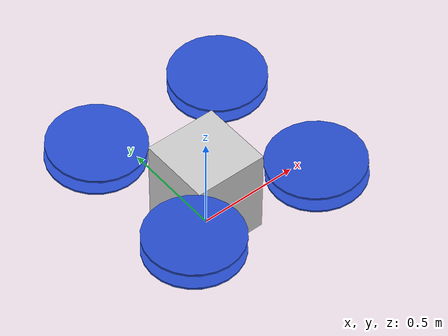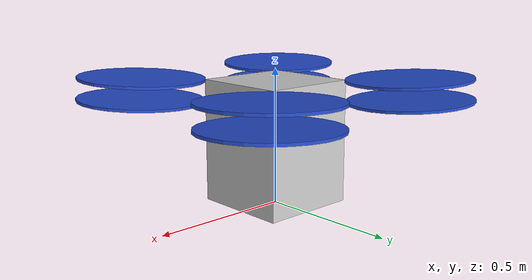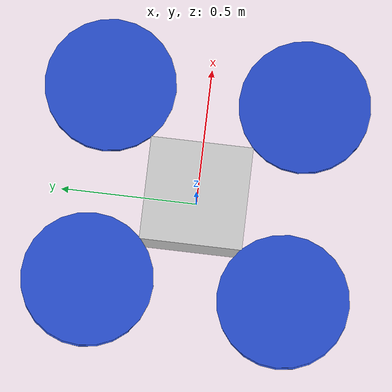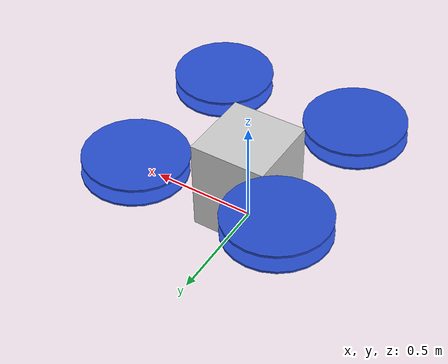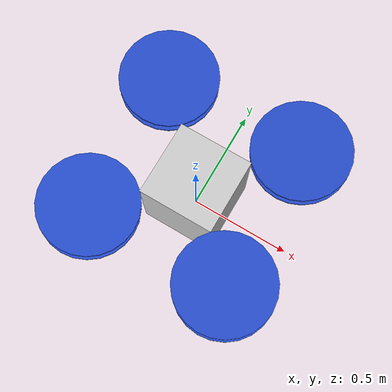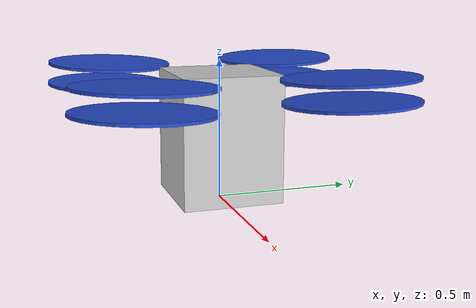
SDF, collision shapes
<?xml version='1.0'?>
<sdf version='1.0'>
  <model name='octa_coax'>
    <pose>0 0 0.37 0 0 0</pose>
    <link name='base_link'>
      <velocity_decay>
        <linear>0.0</linear>
        <angular>0.0</angular>
      </velocity_decay>
      <inertial>
        <pose>0 0 0 0 0 0</pose>
        <mass>5.14296</mass>
        <inertia>
          <ixx>0.20757895</ixx>
          <ixy>8.625e-005</ixy>
          <ixz>-0.0015239</ixz>
          <iyy>0.20539148</iyy>
          <iyz>0.00024137</iyz>
          <izz>0.34998503</izz>
        </inertia>
      </inertial>
      <collision name='base_link_collision'>
        <pose>0 0 -0.13579 0 0 0</pose>
        <geometry>
          <box>
            <size>0.3557 0.3557 0.45</size>
          </box>
        </geometry>
        <surface>
          <contact>
            <ode>
              <max_vel>100.0</max_vel>
              <min_depth>0.001</min_depth>
            </ode>
          </contact>
          <friction>
            <ode>
              <mu>100000.0</mu>
              <mu2>100000.0</mu2>
            </ode>
          </friction>
        </surface>
      </collision>
      <visual name='base_link_visual'>
        <geometry>
          <mesh>
            <uri>model://octa_coax/meshes/octa_coax.dae</uri>
          </mesh>
        </geometry>
        <material>
          <script>
            <name>Gazebo/LightGrey</name>
          </script>
        </material>
      </visual>
    </link>
    <link name='octa_coax/imu_link'>
      <inertial>
        <pose>0 0 0 0 0 0</pose>
        <mass>0.15</mass>
        <inertia>
          <ixx>0.00001</ixx>
          <ixy>0</ixy>
          <ixz>0</ixz>
          <iyy>0.00002</iyy>
          <iyz>0</iyz>
          <izz>0.00002</izz>
        </inertia>
      </inertial>
      <sensor name="imu_sensor" type="imu">
        <pose>0 0 0 3.141593 0 0</pose>
        <always_on>1</always_on>
        <update_rate>1000.0</update_rate>
      </sensor>
    </link>
    <joint name='octa_coax/imu_joint' type='revolute'>
      <child>octa_coax/imu_link</child>
      <parent>base_link</parent>
      <axis>
        <xyz>0 0 1</xyz>
        <limit>
          <lower>0</lower>
          <upper>0</upper>
          <effort>0</effort>
          <velocity>0</velocity>
        </limit>
        <dynamics>
          <damping>1.0</damping>
        </dynamics>
        <use_parent_model_frame>1</use_parent_model_frame>
      </axis>
      <physics>
        <ode>
          <implicit_spring_damper>1</implicit_spring_damper>
        </ode>
      </physics>
    </joint>
    <link name='rotor_0'>
      <pose>0.33920 -0.33742 0.09298 -2.946848039751995e-02 -2.956753593475833e-02 4.363589127691746e-04</pose>
      <inertial>
        <pose>0 0 0 0 0 0</pose>
        <mass>0.11147605</mass>
        <inertia>
          <ixx>0.00051843</ixx>
          <ixy>2.536e-005</ixy>
          <ixz>0</ixz>
          <iyy>3.704e-005</iyy>
          <iyz>0</iyz>
          <izz>0.00053899</izz>
        </inertia>
      </inertial>
      <collision name='rotor_0_collision'>
        <pose>0 0 0 0 0 0</pose>
        <geometry>
          <cylinder>
            <length>0.01</length>
            <radius>0.2285</radius>
          </cylinder>
        </geometry>
        <surface>
          <contact>
            <ode/>
          </contact>
          <friction>
            <ode/>
          </friction>
        </surface>
      </collision>
      <visual name='rotor_0_visual'>
        <pose>0 0 0 0 0 0</pose>
        <geometry>
          <mesh>
            <scale>1 1 1</scale>
            <uri>model://octa_coax/meshes/18x6propeller.dae</uri>
          </mesh>
        </geometry>
        <material>
          <script>
            <name>Gazebo/Blue</name>
            <uri>__default__</uri>
          </script>
        </material>
      </visual>
      <gravity>1</gravity>
      <velocity_decay/>
      <self_collide>0</self_collide>
    </link>
    <joint name='rotor_0_joint' type='revolute'>
      <child>rotor_0</child>
      <parent>base_link</parent>
      <axis>
        <xyz>0 0 1</xyz>
        <limit>
          <lower>-1e+16</lower>
          <upper>1e+16</upper>
        </limit>
        <dynamics>
          <damping>0.004</damping>
        </dynamics>
      </axis>
      <physics>
        <ode>
          <implicit_spring_damper>1</implicit_spring_damper>
        </ode>
      </physics>
    </joint>
    <link name='rotor_1'>
      <pose>0.33887 0.33758 0.09298 2.948243935315289e-02 -2.953876197514078e-02 -4.361408274508556e-04</pose>
      <inertial>
        <pose>0 0 0 0 0 0</pose>
        <mass>0.11147605</mass>
        <inertia>
          <ixx>0.00051843</ixx>
          <ixy>2.536e-005</ixy>
          <ixz>0</ixz>
          <iyy>3.704e-005</iyy>
          <iyz>0</iyz>
          <izz>0.00053899</izz>
        </inertia>
      </inertial>
      <collision name='rotor_1_collision'>
        <pose>0 0 0 0 0 0</pose>
        <geometry>
          <cylinder>
            <length>0.01</length>
            <radius>0.2285</radius>
          </cylinder>
        </geometry>
        <surface>
          <contact>
            <ode/>
          </contact>
          <friction>
            <ode/>
          </friction>
        </surface>
      </collision>
      <visual name='rotor_1_visual'>
        <pose>0 0 0 0 0 0</pose>
        <geometry>
          <mesh>
            <scale>1 1 1</scale>
            <uri>model://octa_coax/meshes/18x6propeller.dae</uri>
          </mesh>
        </geometry>
        <material>
          <script>
            <name>Gazebo/Blue</name>
            <uri>__default__</uri>
          </script>
        </material>
      </visual>
      <gravity>1</gravity>
      <velocity_decay/>
      <self_collide>0</self_collide>
    </link>
    <joint name='rotor_1_joint' type='revolute'>
      <child>rotor_1</child>
      <parent>base_link</parent>
      <axis>
        <xyz>0 0 1</xyz>
        <limit>
          <lower>-1e+16</lower>
          <upper>1e+16</upper>
        </limit>
        <dynamics>
          <damping>0.004</damping>
        </dynamics>
      </axis>
      <physics>
        <ode>
          <implicit_spring_damper>1</implicit_spring_damper>
        </ode>
      </physics>
    </joint>
    <link name='rotor_2'>
      <pose>-0.33613 0.33726 0.09298 2.945439247137240e-02 2.929985185907140e-02 4.322028943977131e-04</pose>
      <inertial>
        <pose>0 0 0 0 0 0</pose>
        <mass>0.11147605</mass>
        <inertia>
          <ixx>0.00051843</ixx>
          <ixy>2.536e-005</ixy>
          <ixz>0</ixz>
          <iyy>3.704e-005</iyy>
          <iyz>0</iyz>
          <izz>0.00053899</izz>
        </inertia>
      </inertial>
      <collision name='rotor_2_collision'>
        <pose>0 0 0 0 0 0</pose>
        <geometry>
          <cylinder>
            <length>0.01</length>
            <radius>0.2285</radius>
          </cylinder>
        </geometry>
        <surface>
          <contact>
            <ode/>
          </contact>
          <friction>
            <ode/>
          </friction>
        </surface>
      </collision>
      <visual name='rotor_2_visual'>
        <pose>0 0 0 0 0 0</pose>
        <geometry>
          <mesh>
            <scale>1 1 1</scale>
            <uri>model://octa_coax/meshes/18x6propeller.dae</uri>
          </mesh>
        </geometry>
        <material>
          <script>
            <name>Gazebo/Blue</name>
            <uri>__default__</uri>
          </script>
        </material>
      </visual>
      <gravity>1</gravity>
      <velocity_decay/>
      <self_collide>0</self_collide>
    </link>
    <joint name='rotor_2_joint' type='revolute'>
      <child>rotor_2</child>
      <parent>base_link</parent>
      <axis>
        <xyz>0 0 1</xyz>
        <limit>
          <lower>-1e+16</lower>
          <upper>1e+16</upper>
        </limit>
        <dynamics>
          <damping>0.004</damping>
        </dynamics>
      </axis>
      <physics>
        <ode>
          <implicit_spring_damper>1</implicit_spring_damper>
        </ode>
      </physics>
    </joint>
    <link name='rotor_3'>
      <pose>-0.33581 -0.33775 0.09298 -2.949716802307004e-02 2.927195005706090e-02 -4.324183251767204e-04</pose>
      <inertial>
        <pose>0 0 0 0 0 0</pose>
        <mass>0.11147605</mass>
        <inertia>
          <ixx>0.00051843</ixx>
          <ixy>2.536e-005</ixy>
          <ixz>0</ixz>
          <iyy>3.704e-005</iyy>
          <iyz>0</iyz>
          <izz>0.00053899</izz>
        </inertia>
      </inertial>
      <collision name='rotor_3_collision'>
        <pose>0 0 0 0 0 0</pose>
        <geometry>
          <cylinder>
            <length>0.01</length>
            <radius>0.2285</radius>
          </cylinder>
        </geometry>
        <surface>
          <contact>
            <ode/>
          </contact>
          <friction>
            <ode/>
          </friction>
        </surface>
      </collision>
      <visual name='rotor_3_visual'>
        <pose>0 0 0 0 0 0</pose>
        <geometry>
          <mesh>
            <scale>1 1 1</scale>
            <uri>model://octa_coax/meshes/18x6propeller.dae</uri>
          </mesh>
        </geometry>
        <material>
          <script>
            <name>Gazebo/Blue</name>
            <uri>__default__</uri>
          </script>
        </material>
      </visual>
      <gravity>1</gravity>
      <velocity_decay/>
      <self_collide>0</self_collide>
    </link>
    <joint name='rotor_3_joint' type='revolute'>
      <child>rotor_3</child>
      <parent>base_link</parent>
      <axis>
        <xyz>0 0 1</xyz>
        <limit>
          <lower>-1e+16</lower>
          <upper>1e+16</upper>
        </limit>
        <dynamics>
          <damping>0.004</damping>
        </dynamics>
      </axis>
      <physics>
        <ode>
          <implicit_spring_damper>1</implicit_spring_damper>
        </ode>
      </physics>
    </joint>
    <link name='rotor_4'>
      <pose>0.34364 0.34235 0.01597 2.989914960284250e-02 -2.995467887312198e-02 -4.485294491689459e-04</pose>
      <inertial>
        <pose>0 0 0 0 0 0</pose>
        <mass>0.11147605</mass>
        <inertia>
          <ixx>0.00051843</ixx>
          <ixy>2.536e-005</ixy>
          <ixz>0</ixz>
          <iyy>3.704e-005</iyy>
          <iyz>0</iyz>
          <izz>0.00053899</izz>
        </inertia>
      </inertial>
      <collision name='rotor_4_collision'>
        <pose>0 0 0 0 0 0</pose>
        <geometry>
          <cylinder>
            <length>0.01</length>
            <radius>0.2285</radius>
          </cylinder>
        </geometry>
        <surface>
          <contact>
            <ode/>
          </contact>
          <friction>
            <ode/>
          </friction>
        </surface>
      </collision>
      <visual name='rotor_4_visual'>
        <pose>0 0 0 0 0 0</pose>
        <geometry>
          <mesh>
            <scale>1 1 1</scale>
            <uri>model://octa_coax/meshes/18x6propeller.dae</uri>
          </mesh>
        </geometry>
        <material>
          <script>
            <name>Gazebo/Blue</name>
            <uri>__default__</uri>
          </script>
        </material>
      </visual>
      <gravity>1</gravity>
      <velocity_decay/>
      <self_collide>0</self_collide>
    </link>
    <joint name='rotor_4_joint' type='revolute'>
      <child>rotor_4</child>
      <parent>base_link</parent>
      <axis>
        <xyz>0 0 1</xyz>
        <limit>
          <lower>-1e+16</lower>
          <upper>1e+16</upper>
        </limit>
        <dynamics>
          <damping>0.004</damping>
        </dynamics>
      </axis>
      <physics>
        <ode>
          <implicit_spring_damper>1</implicit_spring_damper>
        </ode>
      </physics>
    </joint>
    <link name='rotor_5'>
      <pose>0.34396 -0.34219 0.01597 -2.988519061215896e-02 -2.998258123968420e-02 4.487375858345686e-04</pose>
      <inertial>
        <pose>0 0 0 0 0 0</pose>
        <mass>0.11147605</mass>
        <inertia>
          <ixx>0.00051843</ixx>
          <ixy>2.536e-005</ixy>
          <ixz>0</ixz>
          <iyy>3.704e-005</iyy>
          <iyz>0</iyz>
          <izz>0.00053899</izz>
        </inertia>
      </inertial>
      <collision name='rotor_5_collision'>
        <pose>0 0 0 0 0 0</pose>
        <geometry>
          <cylinder>
            <length>0.01</length>
            <radius>0.2285</radius>
          </cylinder>
        </geometry>
        <surface>
          <contact>
            <ode/>
          </contact>
          <friction>
            <ode/>
          </friction>
        </surface>
      </collision>
      <visual name='rotor_5_visual'>
        <pose>0 0 0 0 0 0</pose>
        <geometry>
          <mesh>
            <scale>1 1 1</scale>
            <uri>model://octa_coax/meshes/18x6propeller.dae</uri>
          </mesh>
        </geometry>
        <material>
          <script>
            <name>Gazebo/Blue</name>
            <uri>__default__</uri>
          </script>
        </material>
      </visual>
      <gravity>1</gravity>
      <velocity_decay/>
      <self_collide>0</self_collide>
    </link>
    <joint name='rotor_5_joint' type='revolute'>
      <child>rotor_5</child>
      <parent>base_link</parent>
      <axis>
        <xyz>0 0 1</xyz>
        <limit>
          <lower>-1e+16</lower>
          <upper>1e+16</upper>
        </limit>
        <dynamics>
          <damping>0.004</damping>
        </dynamics>
      </axis>
      <physics>
        <ode>
          <implicit_spring_damper>1</implicit_spring_damper>
        </ode>
      </physics>
    </joint>
    <link name='rotor_6'>
      <pose>-0.34057 -0.34251 0.01597 -2.991300136440946e-02 2.968699172619821e-02 -4.447282690854816e-04</pose>
      <inertial>
        <pose>0 0 0 0 0 0</pose>
        <mass>0.11147605</mass>
        <inertia>
          <ixx>0.00051843</ixx>
          <ixy>2.536e-005</ixy>
          <ixz>0</ixz>
          <iyy>3.704e-005</iyy>
          <iyz>0</iyz>
          <izz>0.00053899</izz>
        </inertia>
      </inertial>
      <collision name='rotor_6_collision'>
        <pose>0 0 0 0 0 0</pose>
        <geometry>
          <cylinder>
            <length>0.01</length>
            <radius>0.2285</radius>
          </cylinder>
        </geometry>
        <surface>
          <contact>
            <ode/>
          </contact>
          <friction>
            <ode/>
          </friction>
        </surface>
      </collision>
      <visual name='rotor_6_visual'>
        <pose>0 0 0 0 0 0</pose>
        <geometry>
          <mesh>
            <scale>1 1 1</scale>
            <uri>model://octa_coax/meshes/18x6propeller.dae</uri>
          </mesh>
        </geometry>
        <material>
          <script>
            <name>Gazebo/Blue</name>
            <uri>__default__</uri>
          </script>
        </material>
      </visual>
      <gravity>1</gravity>
      <velocity_decay/>
      <self_collide>0</self_collide>
    </link>
    <joint name='rotor_6_joint' type='revolute'>
      <child>rotor_6</child>
      <parent>base_link</parent>
      <axis>
        <xyz>0 0 1</xyz>
        <limit>
          <lower>-1e+16</lower>
          <upper>1e+16</upper>
        </limit>
        <dynamics>
          <damping>0.004</damping>
        </dynamics>
      </axis>
      <physics>
        <ode>
          <implicit_spring_damper>1</implicit_spring_damper>
        </ode>
      </physics>
    </joint>
    <link name='rotor_7'>
      <pose>-0.34090 0.34202 0.01597 2.987022654645779e-02 2.971576581221800e-02 4.445228180019638e-04</pose>
      <inertial>
        <pose>0 0 0 0 0 0</pose>
        <mass>0.11147605</mass>
        <inertia>
          <ixx>0.00051843</ixx>
          <ixy>2.536e-005</ixy>
          <ixz>0</ixz>
          <iyy>3.704e-005</iyy>
          <iyz>0</iyz>
          <izz>0.00053899</izz>
        </inertia>
      </inertial>
      <collision name='rotor_7_collision'>
        <pose>0 0 0 0 0 0</pose>
        <geometry>
          <cylinder>
            <length>0.01</length>
            <radius>0.2285</radius>
          </cylinder>
        </geometry>
        <surface>
          <contact>
            <ode/>
          </contact>
          <friction>
            <ode/>
          </friction>
        </surface>
      </collision>
      <visual name='rotor_7_visual'>
        <pose>0 0 0 0 0 0</pose>
        <geometry>
          <mesh>
            <scale>1 1 1</scale>
            <uri>model://octa_coax/meshes/18x6propeller.dae</uri>
          </mesh>
        </geometry>
        <material>
          <script>
            <name>Gazebo/Blue</name>
            <uri>__default__</uri>
          </script>
        </material>
      </visual>
      <gravity>1</gravity>
      <velocity_decay/>
      <self_collide>0</self_collide>
    </link>
    <joint name='rotor_7_joint' type='revolute'>
      <child>rotor_7</child>
      <parent>base_link</parent>
      <axis>
        <xyz>0 0 1</xyz>
        <limit>
          <lower>-1e+16</lower>
          <upper>1e+16</upper>
        </limit>
        <dynamics>
          <damping>0.004</damping>
        </dynamics>
      </axis>
      <physics>
        <ode>
          <implicit_spring_damper>1</implicit_spring_damper>
        </ode>
      </physics>
    </joint>
    <static>0</static>
  </model>
</sdf>
